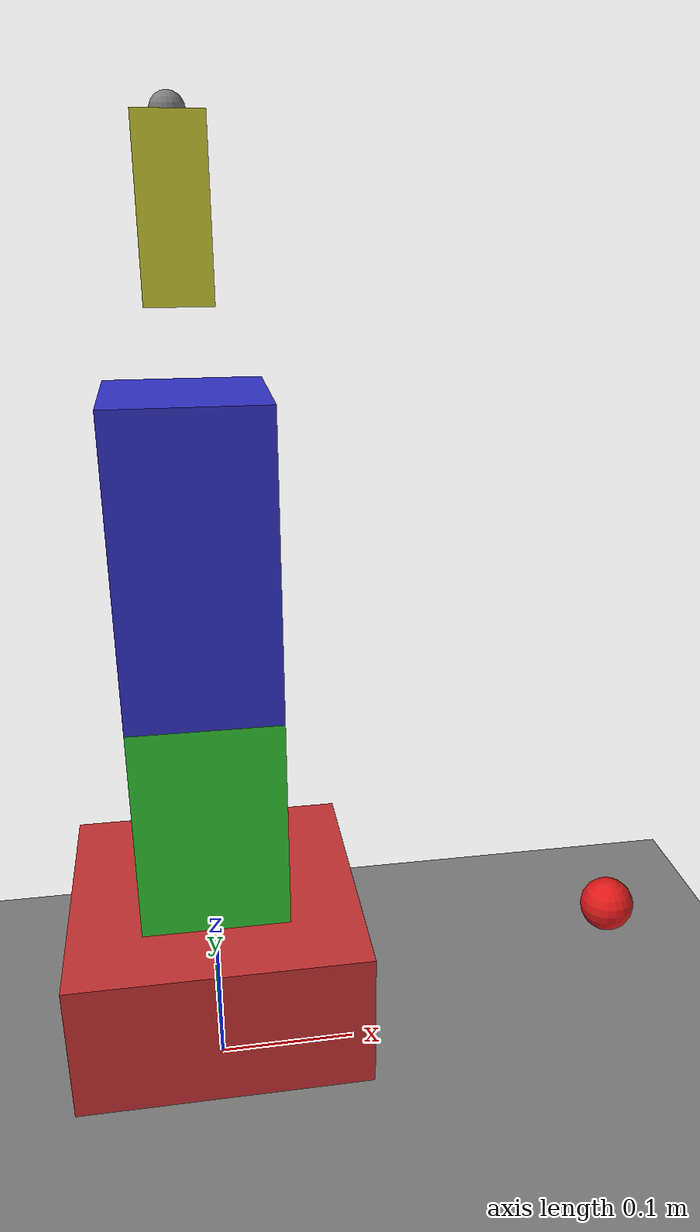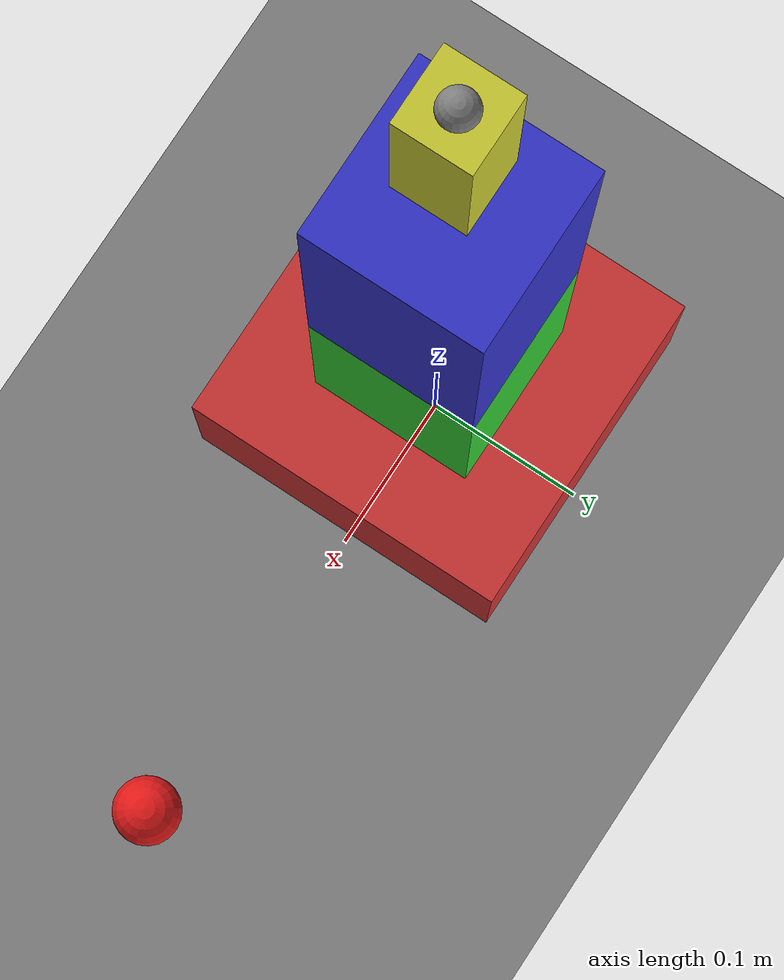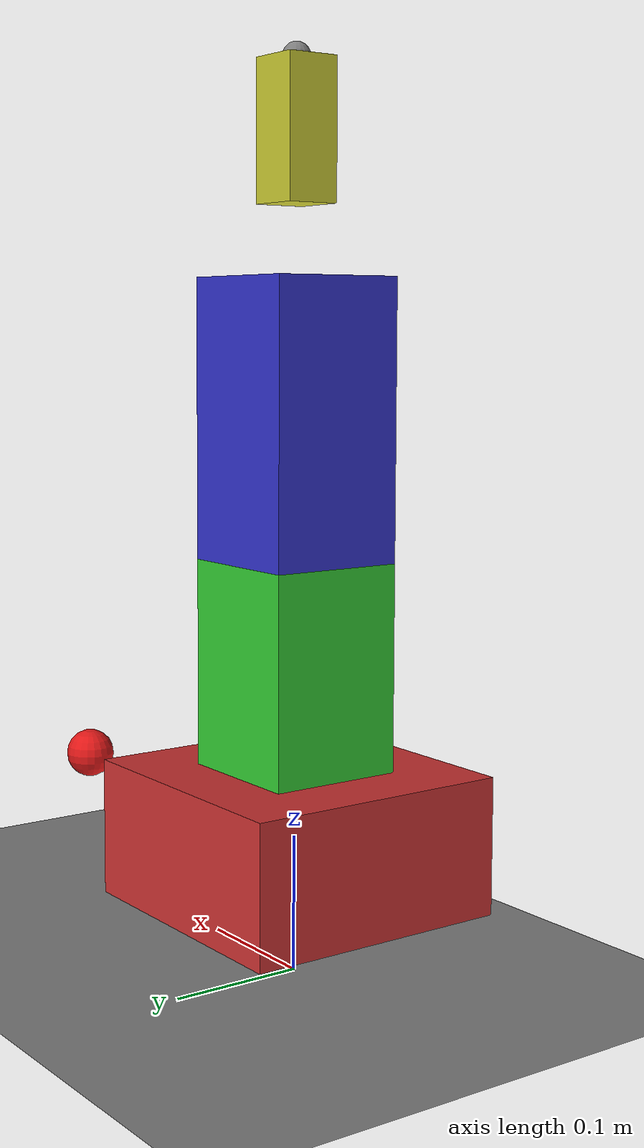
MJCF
<?xml version="1.0"?>
<mujoco model="simple_robot">

  <worldbody>
    <!-- Sol -->
    <geom name="floor" type="plane" pos="0 0 0" size="10 10 0.1" rgba="0.5 0.5 0.5 1"/>

    <!-- Robot simple avec 3 joints -->
    <body name="base" pos="0 0 0.1">
      <geom name="base_geom" type="box" size="0.1 0.1 0.05" rgba="0.8 0.2 0.2 1"/>
      <inertial pos="0 0 0" mass="1" diaginertia="0.01 0.01 0.01"/>

      <body name="arm1" pos="0 0 0.1">
        <joint name="joint1" type="hinge" axis="0 0 1" range="-3.14 3.14"/>
        <geom name="arm1_geom" type="box" size="0.05 0.05 0.1" rgba="0.2 0.8 0.2 1"/>
        <inertial pos="0 0 0.05" mass="0.5" diaginertia="0.005 0.005 0.005"/>

        <body name="arm2" pos="0 0 0.2">
          <joint name="joint2" type="hinge" axis="0 0 1" range="-3.14 3.14"/>
          <geom name="arm2_geom" type="box" size="0.05 0.05 0.1" rgba="0.2 0.2 0.8 1"/>
          <inertial pos="0 0 0.05" mass="0.5" diaginertia="0.005 0.005 0.005"/>

          <body name="gripper" pos="0 0 0.2">
            <joint name="joint3" type="hinge" axis="0 0 1" range="-3.14 3.14"/>
            <geom name="gripper_geom" type="box" size="0.02 0.02 0.05" rgba="0.8 0.8 0.2 1"/>
            <inertial pos="0 0 0.025" mass="0.1" diaginertia="0.001 0.001 0.001"/>
            <site name="gripper_site" pos="0 0 0.05" size="0.01"/>
          </body>
        </body>
      </body>
    </body>

    <!-- Objet à saisir -->
    <body name="target" pos="0.3 0 0.1">
      <geom name="target_geom" type="sphere" size="0.02" rgba="0.9 0.1 0.1 1"/>
      <inertial pos="0 0 0" mass="0.1" diaginertia="0.001 0.001 0.001"/>
      <site name="target_site" pos="0 0 0" size="0.02"/>
    </body>
  </worldbody>

  <actuator>
    <position name="act_joint1" joint="joint1" gear="1"/>
    <position name="act_joint2" joint="joint2" gear="1"/>
    <position name="act_joint3" joint="joint3" gear="1"/>
  </actuator>

  <sensor>
    <framepos name="gripper_pos" objtype="body" objname="gripper"/>
    <framepos name="target_pos" objtype="body" objname="target"/>
    <!-- Capteurs tactiles fictifs -->
    <touch name="touch_sensor_1" site="gripper_site"/>
    <touch name="touch_sensor_2" site="target_site"/>
    <!-- Capteurs de force fictifs -->
    <force name="force_sensor_1" site="gripper_site"/>
    <force name="force_sensor_2" site="target_site"/>
  </sensor>

</mujoco>
